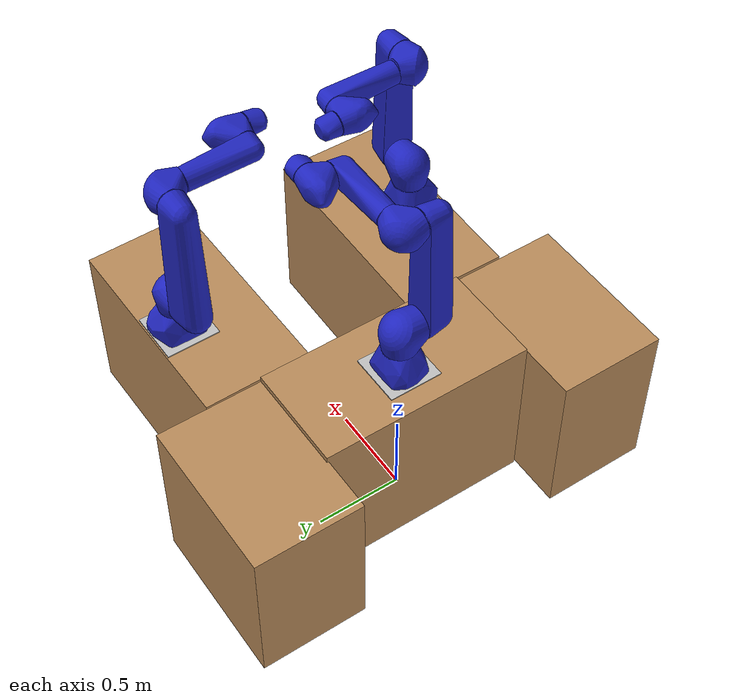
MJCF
<mujoco model="hc10_multiple_arms">
  <compiler angle="radian" meshdir="/home/gaussian/cmu_ri_phd/phd_research/parallel_search/third_party/mujoco-2.3.2/model/hc10dtp/motoman/meshes/hc10dt_b10/" autolimits="true"/>
  <default/>
  <asset>
    <mesh name="base_link" file="collision/base_link.obj"/>
    <mesh name="link_1_s" file="collision/link_1_s.obj"/>
    <mesh name="link_2_l" file="collision/link_2_l.obj"/>
    <mesh name="link_3_u" file="collision/link_3_u.obj"/>
    <mesh name="link_4_r" file="collision/link_4_r.obj"/>
    <mesh name="link_5_b" file="collision/link_5_b.obj"/>
    <mesh name="link_6_t" file="collision/link_6_t.obj"/>
  </asset>

  <worldbody>

    <!-- Lights -->
    <light name="light0" diffuse=".5 .5 .5" pos="1.5 1.5 2"   dir="-1 -1 -.5" castshadow="false" />
    <light name="light1" diffuse=".5 .5 .5" pos="-1.5 1.5 2"  dir="1 -1 -.5" castshadow="false" />
    <light name="light2" diffuse=".5 .5 .5" pos="1.5 -1.5 2"  dir="-1 1 -.5" castshadow="false" />
    <light name="light3" diffuse=".5 .5 .5" pos="-1.5 -1.5 2" dir="1 1 -.5" castshadow="false" />

    <geom size="0.30425 0.609 0.483387" pos="0.038588 0 0.483387" type="box" rgba="0.729 0.549 0.353 1"/>
    <geom size="0.1524 0.1524 0.003175" pos="0 0 0.973125" type="box" rgba="0.7529 0.7529 0.7529 1"/>
    <geom pos="0 0 0.973125" type="mesh" rgba="0.129412 0.14902 0.74902 1" mesh="base_link"/>
    <geom size="0.61 0.30475 0.471488" pos="0.957229 0.625872 0.471488" quat="0.00573337 0 0 -0.999984" type="box" rgba="0.729 0.549 0.353 1"/>
    <geom size="0.1524 0.1524 0.003175" pos="0.880195 0.770183 0.949325" quat="0.709131 0 0 -0.705077" type="box" rgba="0.7529 0.7529 0.7529 1"/>
    <geom pos="0.880195 0.770183 0.949325" quat="0.709131 0 0 -0.705077" type="mesh" rgba="0.129412 0.14902 0.74902 1" mesh="base_link"/>
    <geom size="0.6107 0.30475 0.472275" pos="0.961271 -0.600915 0.472275" quat="0.00573337 0 0 0.999984" type="box" rgba="0.729 0.549 0.353 1"/>
    <geom size="0.1524 0.1524 0.003175" pos="0.9621 -0.73627 0.949325" quat="0.709131 0 0 0.705077" type="box" rgba="0.7529 0.7529 0.7529 1"/>
    <geom pos="0.9621 -0.73627 0.949325" quat="0.709131 0 0 0.705077" type="mesh" rgba="0.129412 0.14902 0.74902 1" mesh="base_link"/>
    <geom size="0.4575 0.305085 0.466725" pos="-0.114589 -0.925107 0.466725" type="box" rgba="0.729 0.549 0.353 1"/>
    <geom size="0.4586 0.305582 0.466725" pos="-0.117171 0.904825 0.466725" type="box" rgba="0.729 0.549 0.353 1"/>
    <body name="arm_1link_1_s" pos="0 0 1.24812" gravcomp="0">
      <joint name="arm_1joint_1_s" pos="0 0 0" axis="0 0 1" range="-3.14159 3.14159"/>
      <geom type="mesh" rgba="0.129412 0.14902 0.74902 1" mesh="link_1_s"/>
      <body name="arm_1link_2_l" pos="0 0 0" gravcomp="0">
        <joint name="arm_1joint_2_l" pos="0 0 0" axis="0 1 0" range="-3.14159 3.14159"/>
        <geom type="mesh" rgba="0.129412 0.14902 0.74902 1" mesh="link_2_l"/>
        <body name="arm_1link_3_u" pos="0 0 0.7" gravcomp="0">
          <joint name="arm_1joint_3_u" pos="0 0 0" axis="0 -1 0" range="-1.65806 4.62512"/>
          <geom type="mesh" rgba="0.129412 0.14902 0.74902 1" mesh="link_3_u"/>
          <body name="arm_1link_4_r" pos="0.5 0 0" gravcomp="0">
            <joint name="arm_1joint_4_r" pos="0 0 0" axis="-1 0 0" range="-3.14159 3.14159"/>
            <geom type="mesh" rgba="0.129412 0.14902 0.74902 1" mesh="link_4_r"/>
            <body name="arm_1link_5_b" pos="0 0.162 0" gravcomp="0">
              <joint name="arm_1joint_5_b" pos="0 0 0" axis="0 -1 0" range="-3.14159 3.14159"/>
              <geom type="mesh" rgba="0.129412 0.14902 0.74902 1" mesh="link_5_b"/>
              <body name="arm_1link_6_t" pos="0 0 0" gravcomp="0">
                <joint name="arm_1joint_6_t" pos="0 0 0" axis="-1 0 0" range="-3.14159 3.14159"/>
                <geom type="mesh" rgba="0.129412 0.14902 0.74902 1" mesh="link_6_t"/>
              </body>
            </body>
          </body>
        </body>
      </body>
    </body>
    <body name="arm_2link_1_s" pos="0.880195 0.770183 1.22433" quat="0.709131 0 0 -0.705077" gravcomp="0">
      <joint name="arm_2joint_1_s" pos="0 0 0" axis="0 0 1" range="-3.14159 3.14159"/>
      <geom type="mesh" rgba="0.129412 0.14902 0.74902 1" mesh="link_1_s"/>
      <body name="arm_2link_2_l" pos="0 0 0" gravcomp="0">
        <joint name="arm_2joint_2_l" pos="0 0 0" axis="0 1 0" range="-3.14159 3.14159"/>
        <geom type="mesh" rgba="0.129412 0.14902 0.74902 1" mesh="link_2_l"/>
        <body name="arm_2link_3_u" pos="0 0 0.7" gravcomp="0">
          <joint name="arm_2joint_3_u" pos="0 0 0" axis="0 -1 0" range="-1.65806 4.62512"/>
          <geom type="mesh" rgba="0.129412 0.14902 0.74902 1" mesh="link_3_u"/>
          <body name="arm_2link_4_r" pos="0.5 0 0" gravcomp="0">
            <joint name="arm_2joint_4_r" pos="0 0 0" axis="-1 0 0" range="-3.14159 3.14159"/>
            <geom type="mesh" rgba="0.129412 0.14902 0.74902 1" mesh="link_4_r"/>
            <body name="arm_2link_5_b" pos="0 0.162 0" gravcomp="0">
              <joint name="arm_2joint_5_b" pos="0 0 0" axis="0 -1 0" range="-3.14159 3.14159"/>
              <geom type="mesh" rgba="0.129412 0.14902 0.74902 1" mesh="link_5_b"/>
              <body name="arm_2link_6_t" pos="0 0 0" gravcomp="0">
                <joint name="arm_2joint_6_t" pos="0 0 0" axis="-1 0 0" range="-3.14159 3.14159"/>
                <geom type="mesh" rgba="0.129412 0.14902 0.74902 1" mesh="link_6_t"/>
              </body>
            </body>
          </body>
        </body>
      </body>
    </body>
    <body name="arm_3link_1_s" pos="0.9621 -0.73627 1.22433" quat="0.709131 0 0 0.705077" gravcomp="0">
      <joint name="arm_3joint_1_s" pos="0 0 0" axis="0 0 1" range="-3.14159 3.14159"/>
      <geom type="mesh" rgba="0.129412 0.14902 0.74902 1" mesh="link_1_s"/>
      <body name="arm_3link_2_l" pos="0 0 0" gravcomp="0">
        <joint name="arm_3joint_2_l" pos="0 0 0" axis="0 1 0" range="-3.14159 3.14159"/>
        <geom type="mesh" rgba="0.129412 0.14902 0.74902 1" mesh="link_2_l"/>
        <body name="arm_3link_3_u" pos="0 0 0.7" gravcomp="0">
          <joint name="arm_3joint_3_u" pos="0 0 0" axis="0 -1 0" range="-1.65806 4.62512"/>
          <geom type="mesh" rgba="0.129412 0.14902 0.74902 1" mesh="link_3_u"/>
          <body name="arm_3link_4_r" pos="0.5 0 0" gravcomp="0">
            <joint name="arm_3joint_4_r" pos="0 0 0" axis="-1 0 0" range="-3.14159 3.14159"/>
            <geom type="mesh" rgba="0.129412 0.14902 0.74902 1" mesh="link_4_r"/>
            <body name="arm_3link_5_b" pos="0 0.162 0" gravcomp="0">
              <joint name="arm_3joint_5_b" pos="0 0 0" axis="0 -1 0" range="-3.14159 3.14159"/>
              <geom type="mesh" rgba="0.129412 0.14902 0.74902 1" mesh="link_5_b"/>
              <body name="arm_3link_6_t" pos="0 0 0" gravcomp="0">
                <joint name="arm_3joint_6_t" pos="0 0 0" axis="-1 0 0" range="-3.14159 3.14159"/>
                <geom type="mesh" rgba="0.129412 0.14902 0.74902 1" mesh="link_6_t"/>
              </body>
            </body>
          </body>
        </body>
      </body>
    </body>
  </worldbody>

  <keyframe>
      <key qpos='-0.546162 0.669401 -0.248195 -5.4534e-05 -0.653177 -1.02473 -0.0624112 0.625559 -0.299575 1.61607 -1.53673 0.64482 1.50254 0.914199 0.991113 3.5906e-05 -1.64772 -2.33449'/>
  </keyframe>
</mujoco>
